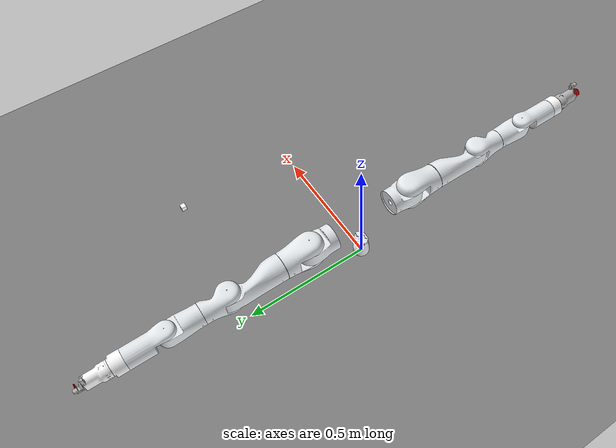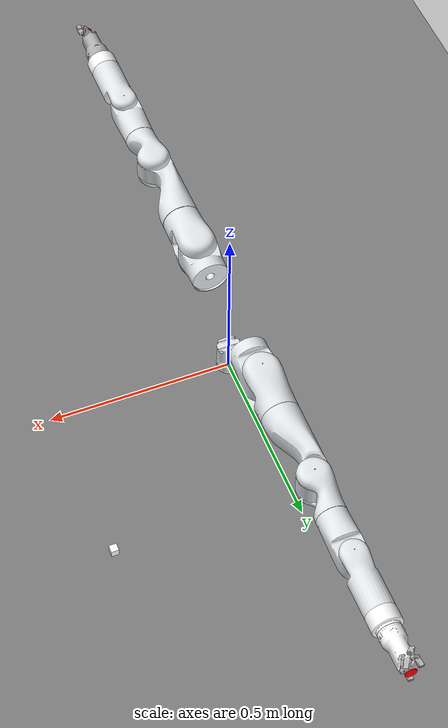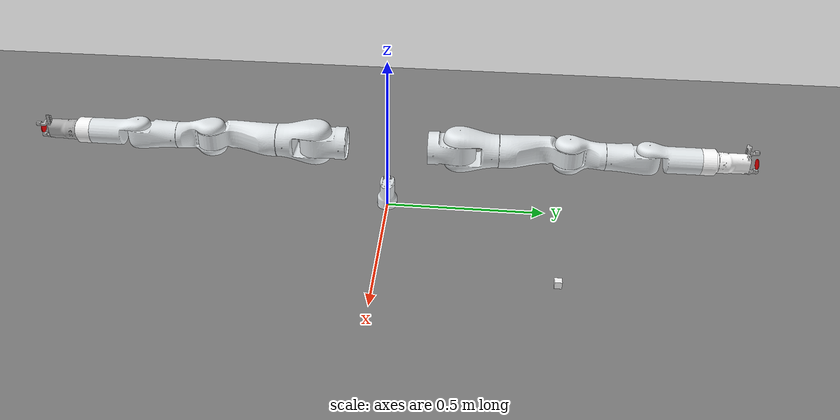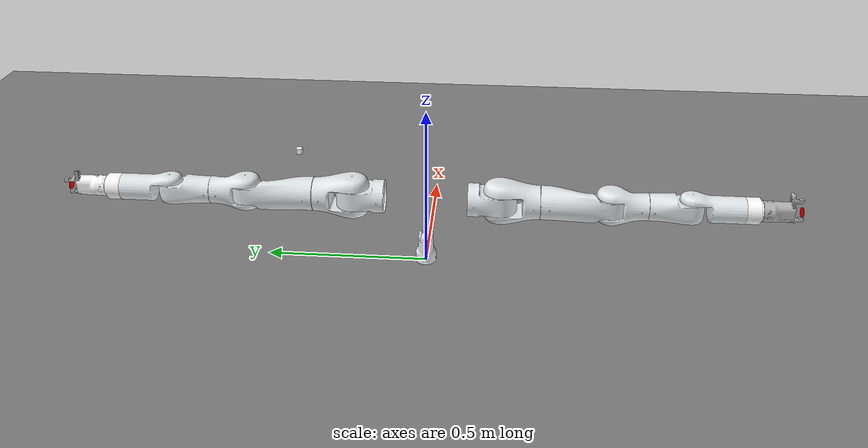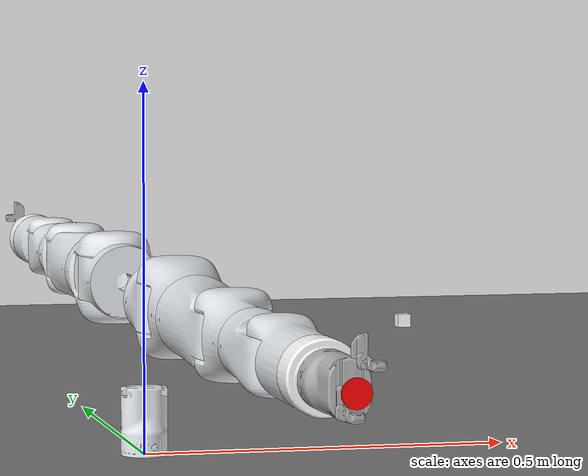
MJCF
<mujoco model="k1 scene">
  <include file="k1_pgc_35_50_new.xml"/>

  <statistic center="0.2 0 0.4" extent=".65" meansize="0.08"/>

  <visual>
    <headlight diffuse="0.3 0.3 0.3" ambient="0.3 0.3 0.3"/>
    <rgba haze="0.15 0.25 0.35 1"/>
    <global azimuth="150" elevation="-20"/>
  </visual>

  <worldbody>
    <light pos="0 0 5"/>
    <body name="target" pos="0.5 0.5 .12" quat="0 1 0 0">
      <geom type="box" size="0.01 0.01 .01" contype="1" conaffinity="1" rgba="1 1 1 1"/>
    </body>
  </worldbody>
</mujoco>

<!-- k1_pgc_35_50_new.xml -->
<mujoco model="K1">
    <compiler angle="radian" />
    <size njmax="500" nconmax="100" />

    <asset>
        <texture name="grid" type="2d" builtin="checker" width="512" height="512"
                rgb1="0.7 0.7 0.7" rgb2="0.3 0.3 0.3" />
        <material name="gridmat" texture="grid" texrepeat="10 10" reflectance="0.2"/>

        <material name="white" rgba="1 1 1 1"/>
        <material name="gray" rgba="0.753 0.753 0.753 1"/>
        <material name="black" rgba="0.149 0.149 0.149 1"/>

        <mesh name="K1_base" file="K1/meshes/base_link.STL"/>
        <mesh name="r1" file="K1/meshes/r1.STL"/>
        <mesh name="r2" file="K1/meshes/r2.STL"/>
        <mesh name="r3" file="K1/meshes/r3.STL"/>
        <mesh name="r4" file="K1/meshes/r4.STL"/>
        <mesh name="r5" file="K1/meshes/r5.STL"/>
        <mesh name="r6" file="K1/meshes/r6.STL"/>
        <mesh name="r7" file="K1/meshes/r7.STL"/>
        <mesh name="rt" file="K1/meshes/rt.STL"/>
        <mesh name="l1" file="K1/meshes/l1.STL"/>
        <mesh name="l2" file="K1/meshes/l2.STL"/>
        <mesh name="l3" file="K1/meshes/l3.STL"/>
        <mesh name="l4" file="K1/meshes/l4.STL"/>
        <mesh name="l5" file="K1/meshes/l5.STL"/>
        <mesh name="l6" file="K1/meshes/l6.STL"/>
        <mesh name="l7" file="K1/meshes/l7.STL"/>
        <mesh name="lt" file="K1/meshes/lt.STL"/>

        <!-- PGC50 Gripper Meshes -->
        <mesh name="pgc50_base" file="pgc50final/meshes/base_link.STL"/>
        <mesh name="pgc50_left" file="pgc50final/meshes/finger1_link.STL"/>
        <mesh name="pgc50_right" file="pgc50final/meshes/finger2_link.STL"/>

    </asset>

    <worldbody>
        <geom name="ground" type="plane" size="10 10 0.1" pos="0 0 0" material="gridmat"/>

        <body name="K1" pos="0 0 0">
            <geom type="mesh" rgba="0.898039 0.917647 0.929412 1" mesh="K1_base"/>

            <!-- Right Arm -->
            <body name="r1" pos="0 -0.016 0.22" quat="0.707105 0.707108 0 0">
                <inertial pos="-2.45882e-06 -3.29465e-07 0.164279" quat="0.707167 -2.68639e-05 -9.80294e-06 0.707047" mass="1.49115" diaginertia="0.00378499 0.00305995 0.00212611"/>
                <joint name="r-j1" pos="0 0 0" axis="0 0 1" limited="true" range="-6.2832 6.2832" damping="500"/>
                <geom type="mesh" rgba="0.898039 0.917647 0.929412 1" mesh="r1"/>
                <body name="r2" pos="0 0 0.2075" quat="-2.59734e-06 2.59735e-06 0.707108 -0.707105">
                    <inertial pos="-1.73913e-05 -0.0453023 0.000758986" quat="0.686243 0.727372 -0.000322585 -0.000281416" mass="2.70307" diaginertia="0.00985116 0.00748601 0.00588233"/>
                    <joint name="r-j2" pos="0 0 0" axis="0 0 1" limited="true" range="-1.8325 1.8325" damping="100"/>
                    <geom type="mesh" rgba="0.898039 0.917647 0.929412 1" mesh="r2"/>
                    <body name="r3" quat="0.707105 0.707108 0 0">
                        <inertial pos="0.00781893 0.00044317 0.236719" quat="0.709432 0.00326875 0.00248826 0.704762" mass="3.5466" diaginertia="0.0186932 0.0185279 0.00375106"/>
                        <joint name="r-j3" pos="0 0 0" axis="0 0 1" limited="true" range="-6.2832 6.2832" damping="500"/>
                        <geom type="mesh" rgba="0.898039 0.917647 0.929412 1" mesh="r3"/>
                        <body name="r4" pos="0.00040027 0 0.33028" quat="0.707105 -0.707108 0 0">
                            <inertial pos="0.0046486 -0.0316068 0.000433525" quat="0.71089 0.701419 0.0357617 0.0369897" mass="1.47408" diaginertia="0.00381095 0.00281231 0.00223976"/>
                            <joint name="r-j4" pos="0 0 0" axis="0 0 1" limited="true" range="-2.5307 0.5235" damping="100"/>
                            <geom type="mesh" rgba="0.898039 0.917647 0.929412 1" mesh="r4"/>
                            <body name="r5" quat="0.707105 0.707108 0 0">
                                <inertial pos="-2.41118e-06 0.00407933 0.183521" quat="0.706544 -0.0370015 0.0369242 0.705736" mass="2.28121" diaginertia="0.00562072 0.00549376 0.00191916"/>
                                <joint name="r-j5" pos="0 0 0" axis="0 0 1" limited="true" range="-6.2832 6.2832" damping="500"/>
                                <geom type="mesh" rgba="0.898039 0.917647 0.929412 1" mesh="r5"/>
                                <body name="r6" pos="0 0 0.23494" quat="-2.59734e-06 2.59735e-06 0.707108 -0.707105">
                                    <inertial pos="-3.20486e-07 -0.0871589 0.00554183" quat="0.430954 0.560588 -0.560603 0.43098" mass="1.76792" diaginertia="0.00448857 0.00447236 0.00137688"/>
                                    <joint name="r-j6" pos="0 0 0" axis="0 0 1" limited="true" range="-1.8325 1.8325" damping="100"/>
                                    <geom type="mesh" rgba="0.898039 0.917647 0.929412 1" mesh="r6"/>
                                    <body name="r7" quat="0.707105 0.707108 0 0">
                                        <inertial pos="2.68777e-07 -3.00437e-05 0.17668" quat="0.00107466 0.707106 0.00107466 0.707106" mass="0.636542" diaginertia="0.000512339 0.000371318 0.000370813"/>
                                        <joint name="r-j7" pos="0 0 0" axis="0 0 1" limited="true" range="-6.2832 6.2832" damping="500"/>
                                        <geom type="mesh" rgba="1 1 1 1" mesh="r7"/>

                                        <!-- 添加右臂末端夹爪 (替换为新URDF结构) -->
                                        <body name="r_gripper_base" pos="0 0 0.20317" quat="1 0 0 0">
                                            <geom type="mesh" rgba="0.792157 0.819608 0.933333 1" mesh="rt"/>
                                            <body name="r_gripper_base2" pos="0 0 0" quat="0.7071 0 0 0.7071">
                                                <!-- PGC50夹爪基础连接 -->
                                                <body name="r_pgc50_base" pos="0 0 0" quat="1 0 0 0">
                                                    <geom type="mesh" rgba="0.69804 0.69804 0.69804 1" mesh="pgc50_base"/>

                                                    <body name="r_pgc50_left" pos="-0.025038 0.010849 0.099">
                                                        <inertial pos="0.0068518 -0.0045468 -0.0031193" quat="0.674942 -0.0950085 -0.303278 0.66592" mass="0.065952" diaginertia="6.24665e-06 4.49395e-06 4.0436e-06"/>
                                                        <joint name="r_gripper_left" pos="0 0 0" axis="1 0 0" type="slide" range="0 0.0185" actuatorfrcrange="-50 50" frictionloss="5"/>
                                                        <geom type="mesh" rgba="0.69804 0.69804 0.69804 1" mesh="pgc50_left"/>
                                                    </body>
                                                    <body name="r_pgc50_right" pos="0.025047 -0.010851 0.099">
                                                        <inertial pos="-0.0068518 0.0045468 -0.0031193" quat="0.674942 0.0950085 0.303278 0.66592" mass="0.065952" diaginertia="6.24665e-06 4.49395e-06 4.0436e-06"/>
                                                        <joint name="r_gripper_right" pos="0 0 0" axis="1 0 0" type="slide" actuatorfrcrange="-50 50" frictionloss="5"/>
                                                        <geom type="mesh" rgba="0.69804 0.69804 0.69804 1" mesh="pgc50_right"/>
                                                    </body>

                                                    <geom pos="0 0 0.1175" quat="1 0 0 0" type="mesh" rgba="1 0 0 1" mesh="rt"/>
                                                </body>
                                            </body>
                                        </body>
                                    </body>
                                </body>
                            </body>
                        </body>
                    </body>
                </body>
            </body>

            <!-- Left Arm -->
            <body name="l1" pos="0 0.016 0.22" quat="-2.59734e-06 -2.59735e-06 -0.707108 -0.707105">
                <inertial pos="-2.45882e-06 -3.29465e-07 0.164279" quat="0.707167 -2.68639e-05 -9.80294e-06 0.707047" mass="1.49115" diaginertia="0.00378499 0.00305995 0.00212611"/>
                <joint name="l-j1" pos="0 0 0" axis="0 0 1" limited="true" range="-6.2832 6.2832" damping="500"/>
                <geom type="mesh" rgba="0.898039 0.917647 0.929412 1" mesh="l1"/>
                <body name="l2" pos="0 0 0.2075" quat="0.707105 -0.707108 0 0">
                    <inertial pos="1.74241e-05 -0.0453023 -0.000759874" quat="0.727372 0.686243 0.000281361 0.000322928" mass="2.70307" diaginertia="0.00985116 0.00748601 0.00588232"/>
                    <joint name="l-j2" pos="0 0 0" axis="0 0 1" limited="true" range="-1.8325 1.8325" damping="100"/>
                    <geom type="mesh" rgba="0.898039 0.917647 0.929412 1" mesh="l2"/>
                    <body name="l3" quat="0.707105 0.707108 0 0">
                        <inertial pos="0.00701838 0.000445385 0.236719" quat="0.709432 0.00326875 0.00248826 0.704762" mass="3.5466" diaginertia="0.0186932 0.0185279 0.00375106"/>
                        <joint name="l-j3" pos="0 0 0" axis="0 0 1" limited="true" range="-6.2832 6.2832" damping="500"/>
                        <geom type="mesh" rgba="0.898039 0.917647 0.929412 1" mesh="l3"/>
                        <body name="l4" pos="-0.00040027 0 0.33028" quat="0.707105 -0.707108 0 0">
                            <inertial pos="0.00464861 -0.0316068 0.000433537" quat="0.710889 0.70142 0.0357617 0.0369896" mass="1.47408" diaginertia="0.00381095 0.00281231 0.00223977"/>
                            <joint name="l-j4" pos="0 0 0" axis="0 0 1" limited="true" range="-2.5307 0.5235" damping="100"/>
                            <geom type="mesh" rgba="0.898039 0.917647 0.929412 1" mesh="l4"/>
                            <body name="l5" quat="0.707105 0.707108 0 0">
                                <inertial pos="2.43097e-06 -0.00407933 0.183521" quat="0.706544 0.0370015 -0.0369242 0.705736" mass="2.28121" diaginertia="0.00562072 0.00549376 0.00191916"/>
                                <joint name="l-j5" pos="0 0 0" axis="0 0 1" limited="true" range="-6.2832 6.2832" damping="500"/>
                                <geom type="mesh" rgba="0.898039 0.917647 0.929412 1" mesh="l5"/>
                                <body name="l6" pos="0 0 0.23494" quat="0.707105 -0.707108 0 0">
                                    <inertial pos="-3.20486e-07 -0.0871589 0.00553927" quat="0.430954 0.560588 -0.560603 0.43098" mass="1.76792" diaginertia="0.00448857 0.00447236 0.00137688"/>
                                    <joint name="l-j6" pos="0 0 0" axis="0 0 1" limited="true" range="-1.8325 1.8325" damping="100"/>
                                    <geom type="mesh" rgba="0.898039 0.917647 0.929412 1" mesh="l6"/>
                                    <body name="l7" quat="0.707105 0.707108 0 0">
                                        <inertial pos="2.68777e-07 -3.25953e-05 0.17668" quat="0.00107441 0.707106 0.00107441 0.707106" mass="0.636542" diaginertia="0.000512339 0.000371319 0.000370813"/>
                                        <joint name="l-j7" pos="0 0 0" axis="0 0 1" limited="true" range="-6.2832 6.2832" damping="500"/>
                                        <geom type="mesh" rgba="1 1 1 1" mesh="l7"/>
                                        <geom pos="0 0 0.203172" quat="1 0 0 0" type="mesh" rgba="0.792157 0.819608 0.933333 1" mesh="lt"/>
                                        <!-- 左臂末端夹爪 (保持不变) -->
                                        <body name="l_gripper_base" pos="0 0 0.203172" quat="1 0 0 0">
                                            <body name="l_gripper_base2" pos="0 0 0" quat="0.707107 0 0 0.707107">
                                                <!-- PGC50夹爪基础连接 -->
                                                <body name="l_pgc50_base" pos="0 0 0" quat="1 0 0 0">
                                                    <geom type="mesh" rgba="1 1 1 1" mesh="pgc50_base"/>

                                                    <body name="l_pgc50_left" pos="-0.025038 0.010849 0.099">
                                                        <inertial pos="0.0068518 -0.0045468 -0.0031193" quat="0.674942 -0.0950085 -0.303278 0.66592" mass="0.065952" diaginertia="6.24665e-06 4.49395e-06 4.0436e-06"/>
                                                        <joint name="l_gripper_left" pos="0 0 0" axis="1 0 0" type="slide" range="0 0.0185" actuatorfrcrange="-50 50" frictionloss="5"/>
                                                        <geom type="mesh" rgba="0.69804 0.69804 0.69804 1" mesh="pgc50_left"/>
                                                    </body>
                                                    <body name="l_pgc50_right" pos="0.025047 -0.010851 0.099">
                                                        <inertial pos="-0.0068518 0.0045468 -0.0031193" quat="0.674942 0.0950085 0.303278 0.66592" mass="0.065952" diaginertia="6.24665e-06 4.49395e-06 4.0436e-06"/>
                                                        <joint name="l_gripper_right" pos="0 0 0" axis="1 0 0" type="slide" actuatorfrcrange="-50 50" frictionloss="5"/>
                                                        <geom type="mesh" rgba="0.69804 0.69804 0.69804 1" mesh="pgc50_right"/>
                                                    </body>

                                                    <geom pos="0 0 0.1175" quat="1 0 0 0" type="mesh" rgba="1 0 0 1" mesh="lt"/>
                                                </body>
                                            </body>
                                        </body>
                                    </body>
                                </body>
                            </body>
                        </body>
                    </body>
                </body>
            </body>
        </body>
    </worldbody>

    <actuator>
        <!-- Right Arm Actuators -->
        <position name="r-j1" joint="r-j1" ctrllimited="true" ctrlrange="-6.2832 6.2832" kp="2000" kv="100"/>
        <position name="r-j2" joint="r-j2" ctrllimited="true" ctrlrange="-1.8325 1.8325" kp="2000" kv="100"/>
        <position name="r-j3" joint="r-j3" ctrllimited="true" ctrlrange="-6.2832 6.2832" kp="1000" kv="50"/>
        <position name="r-j4" joint="r-j4" ctrllimited="true" ctrlrange="-2.5307 0.5235" kp="1000" kv="50"/>
        <position name="r-j5" joint="r-j5" ctrllimited="true" ctrlrange="-6.2832 6.2832" kp="500" kv="25"/>
        <position name="r-j6" joint="r-j6" ctrllimited="true" ctrlrange="-1.8325 1.8325" kp="500" kv="25"/>
        <position name="r-j7" joint="r-j7" ctrllimited="true" ctrlrange="-6.2832 6.2832" kp="500" kv="25"/>

        <!-- Left Arm Actuators -->
        <position name="l-j1" joint="l-j1" ctrllimited="true" ctrlrange="-6.2832 6.2832" kp="2000" kv="100"/>
        <position name="l-j2" joint="l-j2" ctrllimited="true" ctrlrange="-1.8325 1.8325" kp="2000" kv="100"/>
        <position name="l-j3" joint="l-j3" ctrllimited="true" ctrlrange="-6.2832 6.2832" kp="1000" kv="50"/>
        <position name="l-j4" joint="l-j4" ctrllimited="true" ctrlrange="-2.5307 0.5235" kp="1000" kv="50"/>
        <position name="l-j5" joint="l-j5" ctrllimited="true" ctrlrange="-6.2832 6.2832" kp="500" kv="25"/>
        <position name="l-j6" joint="l-j6" ctrllimited="true" ctrlrange="-1.8325 1.8325" kp="500" kv="25"/>
        <position name="l-j7" joint="l-j7" ctrllimited="true" ctrlrange="-6.2832 6.2832" kp="500" kv="25"/>

        <!-- 新增夹爪执行器（MuJoCo使用equality实现联动） -->
        <position name="r_gripper" joint="r_gripper_left" ctrllimited="true" ctrlrange="0 0.01875" kp="10000" kv="100"/>
        <position name="l_gripper" joint="l_gripper_left" ctrllimited="true" ctrlrange="0 0.01875" kp="10000" kv="100"/>

    </actuator>
    <equality>
        <!-- 右爪联动约束 -->
        <joint name="r_gripper_sync" joint1="r_gripper_left" joint2="r_gripper_right" polycoef="0 -1 0" solimp="0.95 0.99 0.001" solref="0.005 1"/>
        <!-- 左爪联动约束 -->
        <joint name="l_gripper_sync" joint1="l_gripper_left" joint2="l_gripper_right" polycoef="0 -1 0" solimp="0.95 0.99 0.001" solref="0.005 1"/>
    </equality>

    <contact>
    </contact>
</mujoco>
